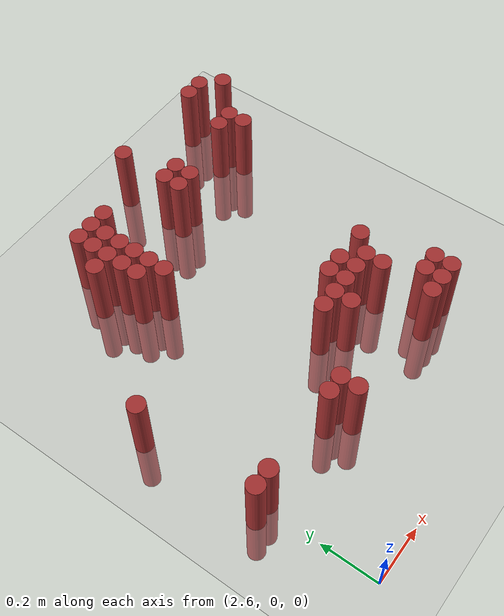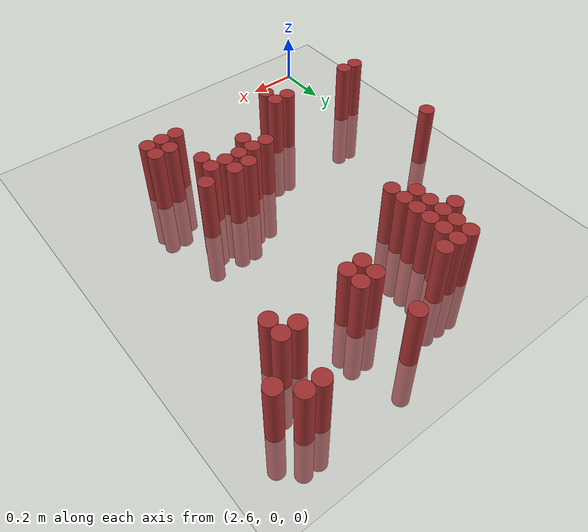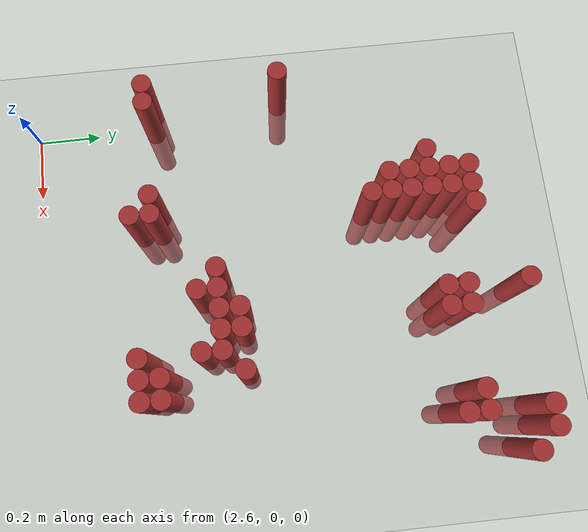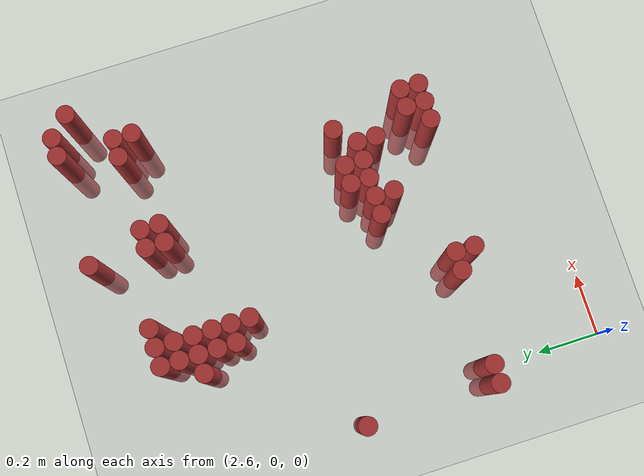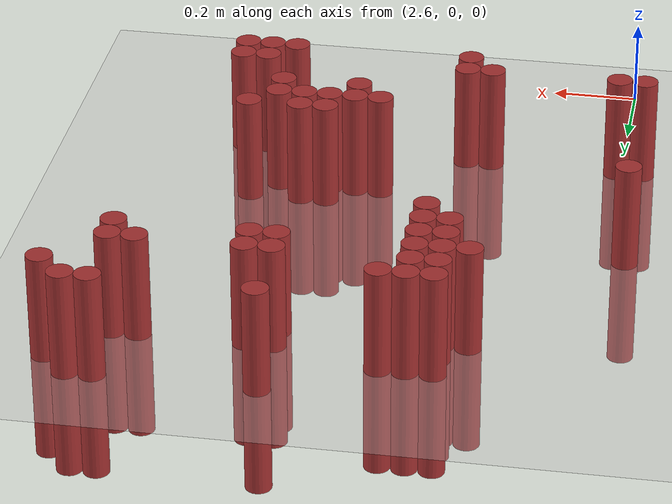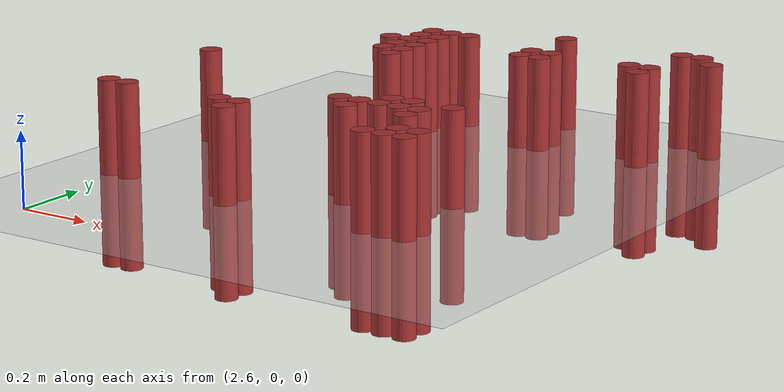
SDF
<sdf version="1.6">
 <world name="default">
  <model name="ground_plane">
   <static>1</static>
   <link name="link">
    <collision name="collision">
     <geometry><plane><normal>0 0 1</normal><size>100 100</size></plane></geometry>
     <surface><friction><ode><mu>100</mu><mu2>50</mu2></ode></friction></surface>
    </collision>
    <visual name="visual">
     <cast_shadows>0</cast_shadows>
     <geometry><plane><normal>0 0 1</normal><size>100 100</size></plane></geometry>
     <material>
      <script><uri>file://media/materials/scripts/gazebo.material</uri><name>Gazebo/Grey</name></script>
     </material>
    </visual>
   </link>
  </model>
  <model name="unit_cylinder_151">
   <static>1</static>
   <pose>3.270000 1.470000 0.000000 0.000000 0.000000 0.000000</pose>
   <link name="link">
    <inertial>
     <mass>1</mass>
     <inertia><ixx>0.145833</ixx><ixy>0</ixy><ixz>0</ixz><iyy>0.145833</iyy><iyz>0</iyz><izz>0.125</izz></inertia>
    </inertial>
    <collision name="collision">
     <geometry><cylinder><radius>0.030000</radius><length>0.5</length></cylinder></geometry>
    </collision>
    <visual name="visual">
     <geometry><cylinder><radius>0.030000</radius><length>0.5</length></cylinder></geometry>
     <material>
      <ambient>0.648000 0.192000 0.192000 1</ambient>
      <diffuse>0.648000 0.192000 0.192000 1</diffuse>
     </material>
     <material>
      <script><name>Gazebo/Grey</name><uri>file://media/materials/scripts/gazebo.material</uri></script>
     </material>
    </visual>
   </link>
  </model>
  <model name="unit_cylinder_152">
   <static>1</static>
   <pose>3.630000 1.470000 0.000000 0.000000 0.000000 0.000000</pose>
   <link name="link">
    <inertial>
     <mass>1</mass>
     <inertia><ixx>0.145833</ixx><ixy>0</ixy><ixz>0</ixz><iyy>0.145833</iyy><iyz>0</iyz><izz>0.125</izz></inertia>
    </inertial>
    <collision name="collision">
     <geometry><cylinder><radius>0.030000</radius><length>0.5</length></cylinder></geometry>
    </collision>
    <visual name="visual">
     <geometry><cylinder><radius>0.030000</radius><length>0.5</length></cylinder></geometry>
     <material>
      <ambient>0.648000 0.192000 0.192000 1</ambient>
      <diffuse>0.648000 0.192000 0.192000 1</diffuse>
     </material>
     <material>
      <script><name>Gazebo/Grey</name><uri>file://media/materials/scripts/gazebo.material</uri></script>
     </material>
    </visual>
   </link>
  </model>
  <model name="unit_cylinder_153">
   <static>1</static>
   <pose>3.690000 1.470000 0.000000 0.000000 0.000000 0.000000</pose>
   <link name="link">
    <inertial>
     <mass>1</mass>
     <inertia><ixx>0.145833</ixx><ixy>0</ixy><ixz>0</ixz><iyy>0.145833</iyy><iyz>0</iyz><izz>0.125</izz></inertia>
    </inertial>
    <collision name="collision">
     <geometry><cylinder><radius>0.030000</radius><length>0.5</length></cylinder></geometry>
    </collision>
    <visual name="visual">
     <geometry><cylinder><radius>0.030000</radius><length>0.5</length></cylinder></geometry>
     <material>
      <ambient>0.648000 0.192000 0.192000 1</ambient>
      <diffuse>0.648000 0.192000 0.192000 1</diffuse>
     </material>
     <material>
      <script><name>Gazebo/Grey</name><uri>file://media/materials/scripts/gazebo.material</uri></script>
     </material>
    </visual>
   </link>
  </model>
  <model name="unit_cylinder_155">
   <static>1</static>
   <pose>3.750000 1.410000 0.000000 0.000000 0.000000 0.000000</pose>
   <link name="link">
    <inertial>
     <mass>1</mass>
     <inertia><ixx>0.145833</ixx><ixy>0</ixy><ixz>0</ixz><iyy>0.145833</iyy><iyz>0</iyz><izz>0.125</izz></inertia>
    </inertial>
    <collision name="collision">
     <geometry><cylinder><radius>0.030000</radius><length>0.5</length></cylinder></geometry>
    </collision>
    <visual name="visual">
     <geometry><cylinder><radius>0.030000</radius><length>0.5</length></cylinder></geometry>
     <material>
      <ambient>0.648000 0.192000 0.192000 1</ambient>
      <diffuse>0.648000 0.192000 0.192000 1</diffuse>
     </material>
     <material>
      <script><name>Gazebo/Grey</name><uri>file://media/materials/scripts/gazebo.material</uri></script>
     </material>
    </visual>
   </link>
  </model>
  <model name="unit_cylinder_156">
   <static>1</static>
   <pose>2.910000 1.350000 0.000000 0.000000 0.000000 0.000000</pose>
   <link name="link">
    <inertial>
     <mass>1</mass>
     <inertia><ixx>0.145833</ixx><ixy>0</ixy><ixz>0</ixz><iyy>0.145833</iyy><iyz>0</iyz><izz>0.125</izz></inertia>
    </inertial>
    <collision name="collision">
     <geometry><cylinder><radius>0.030000</radius><length>0.5</length></cylinder></geometry>
    </collision>
    <visual name="visual">
     <geometry><cylinder><radius>0.030000</radius><length>0.5</length></cylinder></geometry>
     <material>
      <ambient>0.648000 0.192000 0.192000 1</ambient>
      <diffuse>0.648000 0.192000 0.192000 1</diffuse>
     </material>
     <material>
      <script><name>Gazebo/Grey</name><uri>file://media/materials/scripts/gazebo.material</uri></script>
     </material>
    </visual>
   </link>
  </model>
  <model name="unit_cylinder_157">
   <static>1</static>
   <pose>2.970000 1.350000 0.000000 0.000000 0.000000 0.000000</pose>
   <link name="link">
    <inertial>
     <mass>1</mass>
     <inertia><ixx>0.145833</ixx><ixy>0</ixy><ixz>0</ixz><iyy>0.145833</iyy><iyz>0</iyz><izz>0.125</izz></inertia>
    </inertial>
    <collision name="collision">
     <geometry><cylinder><radius>0.030000</radius><length>0.5</length></cylinder></geometry>
    </collision>
    <visual name="visual">
     <geometry><cylinder><radius>0.030000</radius><length>0.5</length></cylinder></geometry>
     <material>
      <ambient>0.648000 0.192000 0.192000 1</ambient>
      <diffuse>0.648000 0.192000 0.192000 1</diffuse>
     </material>
     <material>
      <script><name>Gazebo/Grey</name><uri>file://media/materials/scripts/gazebo.material</uri></script>
     </material>
    </visual>
   </link>
  </model>
  <model name="unit_cylinder_158">
   <static>1</static>
   <pose>3.030000 1.350000 0.000000 0.000000 0.000000 0.000000</pose>
   <link name="link">
    <inertial>
     <mass>1</mass>
     <inertia><ixx>0.145833</ixx><ixy>0</ixy><ixz>0</ixz><iyy>0.145833</iyy><iyz>0</iyz><izz>0.125</izz></inertia>
    </inertial>
    <collision name="collision">
     <geometry><cylinder><radius>0.030000</radius><length>0.5</length></cylinder></geometry>
    </collision>
    <visual name="visual">
     <geometry><cylinder><radius>0.030000</radius><length>0.5</length></cylinder></geometry>
     <material>
      <ambient>0.648000 0.192000 0.192000 1</ambient>
      <diffuse>0.648000 0.192000 0.192000 1</diffuse>
     </material>
     <material>
      <script><name>Gazebo/Grey</name><uri>file://media/materials/scripts/gazebo.material</uri></script>
     </material>
    </visual>
   </link>
  </model>
  <model name="unit_cylinder_159">
   <static>1</static>
   <pose>2.910000 1.290000 0.000000 0.000000 0.000000 0.000000</pose>
   <link name="link">
    <inertial>
     <mass>1</mass>
     <inertia><ixx>0.145833</ixx><ixy>0</ixy><ixz>0</ixz><iyy>0.145833</iyy><iyz>0</iyz><izz>0.125</izz></inertia>
    </inertial>
    <collision name="collision">
     <geometry><cylinder><radius>0.030000</radius><length>0.5</length></cylinder></geometry>
    </collision>
    <visual name="visual">
     <geometry><cylinder><radius>0.030000</radius><length>0.5</length></cylinder></geometry>
     <material>
      <ambient>0.648000 0.192000 0.192000 1</ambient>
      <diffuse>0.648000 0.192000 0.192000 1</diffuse>
     </material>
     <material>
      <script><name>Gazebo/Grey</name><uri>file://media/materials/scripts/gazebo.material</uri></script>
     </material>
    </visual>
   </link>
  </model>
  <model name="unit_cylinder_160">
   <static>1</static>
   <pose>2.970000 1.290000 0.000000 0.000000 0.000000 0.000000</pose>
   <link name="link">
    <inertial>
     <mass>1</mass>
     <inertia><ixx>0.145833</ixx><ixy>0</ixy><ixz>0</ixz><iyy>0.145833</iyy><iyz>0</iyz><izz>0.125</izz></inertia>
    </inertial>
    <collision name="collision">
     <geometry><cylinder><radius>0.030000</radius><length>0.5</length></cylinder></geometry>
    </collision>
    <visual name="visual">
     <geometry><cylinder><radius>0.030000</radius><length>0.5</length></cylinder></geometry>
     <material>
      <ambient>0.648000 0.192000 0.192000 1</ambient>
      <diffuse>0.648000 0.192000 0.192000 1</diffuse>
     </material>
     <material>
      <script><name>Gazebo/Grey</name><uri>file://media/materials/scripts/gazebo.material</uri></script>
     </material>
    </visual>
   </link>
  </model>
  <model name="unit_cylinder_161">
   <static>1</static>
   <pose>3.270000 1.290000 0.000000 0.000000 0.000000 0.000000</pose>
   <link name="link">
    <inertial>
     <mass>1</mass>
     <inertia><ixx>0.145833</ixx><ixy>0</ixy><ixz>0</ixz><iyy>0.145833</iyy><iyz>0</iyz><izz>0.125</izz></inertia>
    </inertial>
    <collision name="collision">
     <geometry><cylinder><radius>0.030000</radius><length>0.5</length></cylinder></geometry>
    </collision>
    <visual name="visual">
     <geometry><cylinder><radius>0.030000</radius><length>0.5</length></cylinder></geometry>
     <material>
      <ambient>0.648000 0.192000 0.192000 1</ambient>
      <diffuse>0.648000 0.192000 0.192000 1</diffuse>
     </material>
     <material>
      <script><name>Gazebo/Grey</name><uri>file://media/materials/scripts/gazebo.material</uri></script>
     </material>
    </visual>
   </link>
  </model>
  <model name="unit_cylinder_162">
   <static>1</static>
   <pose>3.330000 1.290000 0.000000 0.000000 0.000000 0.000000</pose>
   <link name="link">
    <inertial>
     <mass>1</mass>
     <inertia><ixx>0.145833</ixx><ixy>0</ixy><ixz>0</ixz><iyy>0.145833</iyy><iyz>0</iyz><izz>0.125</izz></inertia>
    </inertial>
    <collision name="collision">
     <geometry><cylinder><radius>0.030000</radius><length>0.5</length></cylinder></geometry>
    </collision>
    <visual name="visual">
     <geometry><cylinder><radius>0.030000</radius><length>0.5</length></cylinder></geometry>
     <material>
      <ambient>0.648000 0.192000 0.192000 1</ambient>
      <diffuse>0.648000 0.192000 0.192000 1</diffuse>
     </material>
     <material>
      <script><name>Gazebo/Grey</name><uri>file://media/materials/scripts/gazebo.material</uri></script>
     </material>
    </visual>
   </link>
  </model>
  <model name="unit_cylinder_163">
   <static>1</static>
   <pose>3.570000 1.290000 0.000000 0.000000 0.000000 0.000000</pose>
   <link name="link">
    <inertial>
     <mass>1</mass>
     <inertia><ixx>0.145833</ixx><ixy>0</ixy><ixz>0</ixz><iyy>0.145833</iyy><iyz>0</iyz><izz>0.125</izz></inertia>
    </inertial>
    <collision name="collision">
     <geometry><cylinder><radius>0.030000</radius><length>0.5</length></cylinder></geometry>
    </collision>
    <visual name="visual">
     <geometry><cylinder><radius>0.030000</radius><length>0.5</length></cylinder></geometry>
     <material>
      <ambient>0.648000 0.192000 0.192000 1</ambient>
      <diffuse>0.648000 0.192000 0.192000 1</diffuse>
     </material>
     <material>
      <script><name>Gazebo/Grey</name><uri>file://media/materials/scripts/gazebo.material</uri></script>
     </material>
    </visual>
   </link>
  </model>
  <model name="unit_cylinder_164">
   <static>1</static>
   <pose>3.630000 1.290000 0.000000 0.000000 0.000000 0.000000</pose>
   <link name="link">
    <inertial>
     <mass>1</mass>
     <inertia><ixx>0.145833</ixx><ixy>0</ixy><ixz>0</ixz><iyy>0.145833</iyy><iyz>0</iyz><izz>0.125</izz></inertia>
    </inertial>
    <collision name="collision">
     <geometry><cylinder><radius>0.030000</radius><length>0.5</length></cylinder></geometry>
    </collision>
    <visual name="visual">
     <geometry><cylinder><radius>0.030000</radius><length>0.5</length></cylinder></geometry>
     <material>
      <ambient>0.648000 0.192000 0.192000 1</ambient>
      <diffuse>0.648000 0.192000 0.192000 1</diffuse>
     </material>
     <material>
      <script><name>Gazebo/Grey</name><uri>file://media/materials/scripts/gazebo.material</uri></script>
     </material>
    </visual>
   </link>
  </model>
  <model name="unit_cylinder_166">
   <static>1</static>
   <pose>2.850000 1.230000 0.000000 0.000000 0.000000 0.000000</pose>
   <link name="link">
    <inertial>
     <mass>1</mass>
     <inertia><ixx>0.145833</ixx><ixy>0</ixy><ixz>0</ixz><iyy>0.145833</iyy><iyz>0</iyz><izz>0.125</izz></inertia>
    </inertial>
    <collision name="collision">
     <geometry><cylinder><radius>0.030000</radius><length>0.5</length></cylinder></geometry>
    </collision>
    <visual name="visual">
     <geometry><cylinder><radius>0.030000</radius><length>0.5</length></cylinder></geometry>
     <material>
      <ambient>0.648000 0.192000 0.192000 1</ambient>
      <diffuse>0.648000 0.192000 0.192000 1</diffuse>
     </material>
     <material>
      <script><name>Gazebo/Grey</name><uri>file://media/materials/scripts/gazebo.material</uri></script>
     </material>
    </visual>
   </link>
  </model>
  <model name="unit_cylinder_167">
   <static>1</static>
   <pose>2.910000 1.230000 0.000000 0.000000 0.000000 0.000000</pose>
   <link name="link">
    <inertial>
     <mass>1</mass>
     <inertia><ixx>0.145833</ixx><ixy>0</ixy><ixz>0</ixz><iyy>0.145833</iyy><iyz>0</iyz><izz>0.125</izz></inertia>
    </inertial>
    <collision name="collision">
     <geometry><cylinder><radius>0.030000</radius><length>0.5</length></cylinder></geometry>
    </collision>
    <visual name="visual">
     <geometry><cylinder><radius>0.030000</radius><length>0.5</length></cylinder></geometry>
     <material>
      <ambient>0.648000 0.192000 0.192000 1</ambient>
      <diffuse>0.648000 0.192000 0.192000 1</diffuse>
     </material>
     <material>
      <script><name>Gazebo/Grey</name><uri>file://media/materials/scripts/gazebo.material</uri></script>
     </material>
    </visual>
   </link>
  </model>
  <model name="unit_cylinder_168">
   <static>1</static>
   <pose>2.970000 1.230000 0.000000 0.000000 0.000000 0.000000</pose>
   <link name="link">
    <inertial>
     <mass>1</mass>
     <inertia><ixx>0.145833</ixx><ixy>0</ixy><ixz>0</ixz><iyy>0.145833</iyy><iyz>0</iyz><izz>0.125</izz></inertia>
    </inertial>
    <collision name="collision">
     <geometry><cylinder><radius>0.030000</radius><length>0.5</length></cylinder></geometry>
    </collision>
    <visual name="visual">
     <geometry><cylinder><radius>0.030000</radius><length>0.5</length></cylinder></geometry>
     <material>
      <ambient>0.648000 0.192000 0.192000 1</ambient>
      <diffuse>0.648000 0.192000 0.192000 1</diffuse>
     </material>
     <material>
      <script><name>Gazebo/Grey</name><uri>file://media/materials/scripts/gazebo.material</uri></script>
     </material>
    </visual>
   </link>
  </model>
  <model name="unit_cylinder_169">
   <static>1</static>
   <pose>3.270000 1.230000 0.000000 0.000000 0.000000 0.000000</pose>
   <link name="link">
    <inertial>
     <mass>1</mass>
     <inertia><ixx>0.145833</ixx><ixy>0</ixy><ixz>0</ixz><iyy>0.145833</iyy><iyz>0</iyz><izz>0.125</izz></inertia>
    </inertial>
    <collision name="collision">
     <geometry><cylinder><radius>0.030000</radius><length>0.5</length></cylinder></geometry>
    </collision>
    <visual name="visual">
     <geometry><cylinder><radius>0.030000</radius><length>0.5</length></cylinder></geometry>
     <material>
      <ambient>0.648000 0.192000 0.192000 1</ambient>
      <diffuse>0.648000 0.192000 0.192000 1</diffuse>
     </material>
     <material>
      <script><name>Gazebo/Grey</name><uri>file://media/materials/scripts/gazebo.material</uri></script>
     </material>
    </visual>
   </link>
  </model>
  <model name="unit_cylinder_170">
   <static>1</static>
   <pose>3.330000 1.230000 0.000000 0.000000 0.000000 0.000000</pose>
   <link name="link">
    <inertial>
     <mass>1</mass>
     <inertia><ixx>0.145833</ixx><ixy>0</ixy><ixz>0</ixz><iyy>0.145833</iyy><iyz>0</iyz><izz>0.125</izz></inertia>
    </inertial>
    <collision name="collision">
     <geometry><cylinder><radius>0.030000</radius><length>0.5</length></cylinder></geometry>
    </collision>
    <visual name="visual">
     <geometry><cylinder><radius>0.030000</radius><length>0.5</length></cylinder></geometry>
     <material>
      <ambient>0.648000 0.192000 0.192000 1</ambient>
      <diffuse>0.648000 0.192000 0.192000 1</diffuse>
     </material>
     <material>
      <script><name>Gazebo/Grey</name><uri>file://media/materials/scripts/gazebo.material</uri></script>
     </material>
    </visual>
   </link>
  </model>
  <model name="unit_cylinder_171">
   <static>1</static>
   <pose>3.630000 1.230000 0.000000 0.000000 0.000000 0.000000</pose>
   <link name="link">
    <inertial>
     <mass>1</mass>
     <inertia><ixx>0.145833</ixx><ixy>0</ixy><ixz>0</ixz><iyy>0.145833</iyy><iyz>0</iyz><izz>0.125</izz></inertia>
    </inertial>
    <collision name="collision">
     <geometry><cylinder><radius>0.030000</radius><length>0.5</length></cylinder></geometry>
    </collision>
    <visual name="visual">
     <geometry><cylinder><radius>0.030000</radius><length>0.5</length></cylinder></geometry>
     <material>
      <ambient>0.648000 0.192000 0.192000 1</ambient>
      <diffuse>0.648000 0.192000 0.192000 1</diffuse>
     </material>
     <material>
      <script><name>Gazebo/Grey</name><uri>file://media/materials/scripts/gazebo.material</uri></script>
     </material>
    </visual>
   </link>
  </model>
  <model name="unit_cylinder_174">
   <static>1</static>
   <pose>2.910000 1.170000 0.000000 0.000000 0.000000 0.000000</pose>
   <link name="link">
    <inertial>
     <mass>1</mass>
     <inertia><ixx>0.145833</ixx><ixy>0</ixy><ixz>0</ixz><iyy>0.145833</iyy><iyz>0</iyz><izz>0.125</izz></inertia>
    </inertial>
    <collision name="collision">
     <geometry><cylinder><radius>0.030000</radius><length>0.5</length></cylinder></geometry>
    </collision>
    <visual name="visual">
     <geometry><cylinder><radius>0.030000</radius><length>0.5</length></cylinder></geometry>
     <material>
      <ambient>0.648000 0.192000 0.192000 1</ambient>
      <diffuse>0.648000 0.192000 0.192000 1</diffuse>
     </material>
     <material>
      <script><name>Gazebo/Grey</name><uri>file://media/materials/scripts/gazebo.material</uri></script>
     </material>
    </visual>
   </link>
  </model>
  <model name="unit_cylinder_175">
   <static>1</static>
   <pose>2.970000 1.170000 0.000000 0.000000 0.000000 0.000000</pose>
   <link name="link">
    <inertial>
     <mass>1</mass>
     <inertia><ixx>0.145833</ixx><ixy>0</ixy><ixz>0</ixz><iyy>0.145833</iyy><iyz>0</iyz><izz>0.125</izz></inertia>
    </inertial>
    <collision name="collision">
     <geometry><cylinder><radius>0.030000</radius><length>0.5</length></cylinder></geometry>
    </collision>
    <visual name="visual">
     <geometry><cylinder><radius>0.030000</radius><length>0.5</length></cylinder></geometry>
     <material>
      <ambient>0.648000 0.192000 0.192000 1</ambient>
      <diffuse>0.648000 0.192000 0.192000 1</diffuse>
     </material>
     <material>
      <script><name>Gazebo/Grey</name><uri>file://media/materials/scripts/gazebo.material</uri></script>
     </material>
    </visual>
   </link>
  </model>
  <model name="unit_cylinder_176">
   <static>1</static>
   <pose>2.910000 1.110000 0.000000 0.000000 0.000000 0.000000</pose>
   <link name="link">
    <inertial>
     <mass>1</mass>
     <inertia><ixx>0.145833</ixx><ixy>0</ixy><ixz>0</ixz><iyy>0.145833</iyy><iyz>0</iyz><izz>0.125</izz></inertia>
    </inertial>
    <collision name="collision">
     <geometry><cylinder><radius>0.030000</radius><length>0.5</length></cylinder></geometry>
    </collision>
    <visual name="visual">
     <geometry><cylinder><radius>0.030000</radius><length>0.5</length></cylinder></geometry>
     <material>
      <ambient>0.648000 0.192000 0.192000 1</ambient>
      <diffuse>0.648000 0.192000 0.192000 1</diffuse>
     </material>
     <material>
      <script><name>Gazebo/Grey</name><uri>file://media/materials/scripts/gazebo.material</uri></script>
     </material>
    </visual>
   </link>
  </model>
  <model name="unit_cylinder_177">
   <static>1</static>
   <pose>2.970000 1.110000 0.000000 0.000000 0.000000 0.000000</pose>
   <link name="link">
    <inertial>
     <mass>1</mass>
     <inertia><ixx>0.145833</ixx><ixy>0</ixy><ixz>0</ixz><iyy>0.145833</iyy><iyz>0</iyz><izz>0.125</izz></inertia>
    </inertial>
    <collision name="collision">
     <geometry><cylinder><radius>0.030000</radius><length>0.5</length></cylinder></geometry>
    </collision>
    <visual name="visual">
     <geometry><cylinder><radius>0.030000</radius><length>0.5</length></cylinder></geometry>
     <material>
      <ambient>0.648000 0.192000 0.192000 1</ambient>
      <diffuse>0.648000 0.192000 0.192000 1</diffuse>
     </material>
     <material>
      <script><name>Gazebo/Grey</name><uri>file://media/materials/scripts/gazebo.material</uri></script>
     </material>
    </visual>
   </link>
  </model>
  <model name="unit_cylinder_180">
   <static>1</static>
   <pose>2.970000 1.050000 0.000000 0.000000 0.000000 0.000000</pose>
   <link name="link">
    <inertial>
     <mass>1</mass>
     <inertia><ixx>0.145833</ixx><ixy>0</ixy><ixz>0</ixz><iyy>0.145833</iyy><iyz>0</iyz><izz>0.125</izz></inertia>
    </inertial>
    <collision name="collision">
     <geometry><cylinder><radius>0.030000</radius><length>0.5</length></cylinder></geometry>
    </collision>
    <visual name="visual">
     <geometry><cylinder><radius>0.030000</radius><length>0.5</length></cylinder></geometry>
     <material>
      <ambient>0.648000 0.192000 0.192000 1</ambient>
      <diffuse>0.648000 0.192000 0.192000 1</diffuse>
     </material>
     <material>
      <script><name>Gazebo/Grey</name><uri>file://media/materials/scripts/gazebo.material</uri></script>
     </material>
    </visual>
   </link>
  </model>
  <model name="unit_cylinder_191">
   <static>1</static>
   <pose>2.550000 0.810000 0.000000 0.000000 0.000000 0.000000</pose>
   <link name="link">
    <inertial>
     <mass>1</mass>
     <inertia><ixx>0.145833</ixx><ixy>0</ixy><ixz>0</ixz><iyy>0.145833</iyy><iyz>0</iyz><izz>0.125</izz></inertia>
    </inertial>
    <collision name="collision">
     <geometry><cylinder><radius>0.030000</radius><length>0.5</length></cylinder></geometry>
    </collision>
    <visual name="visual">
     <geometry><cylinder><radius>0.030000</radius><length>0.5</length></cylinder></geometry>
     <material>
      <ambient>0.648000 0.192000 0.192000 1</ambient>
      <diffuse>0.648000 0.192000 0.192000 1</diffuse>
     </material>
     <material>
      <script><name>Gazebo/Grey</name><uri>file://media/materials/scripts/gazebo.material</uri></script>
     </material>
    </visual>
   </link>
  </model>
  <model name="unit_cylinder_193">
   <static>1</static>
   <pose>3.270000 0.630000 0.000000 0.000000 0.000000 0.000000</pose>
   <link name="link">
    <inertial>
     <mass>1</mass>
     <inertia><ixx>0.145833</ixx><ixy>0</ixy><ixz>0</ixz><iyy>0.145833</iyy><iyz>0</iyz><izz>0.125</izz></inertia>
    </inertial>
    <collision name="collision">
     <geometry><cylinder><radius>0.030000</radius><length>0.5</length></cylinder></geometry>
    </collision>
    <visual name="visual">
     <geometry><cylinder><radius>0.030000</radius><length>0.5</length></cylinder></geometry>
     <material>
      <ambient>0.648000 0.192000 0.192000 1</ambient>
      <diffuse>0.648000 0.192000 0.192000 1</diffuse>
     </material>
     <material>
      <script><name>Gazebo/Grey</name><uri>file://media/materials/scripts/gazebo.material</uri></script>
     </material>
    </visual>
   </link>
  </model>
  <model name="unit_cylinder_194">
   <static>1</static>
   <pose>3.330000 0.630000 0.000000 0.000000 0.000000 0.000000</pose>
   <link name="link">
    <inertial>
     <mass>1</mass>
     <inertia><ixx>0.145833</ixx><ixy>0</ixy><ixz>0</ixz><iyy>0.145833</iyy><iyz>0</iyz><izz>0.125</izz></inertia>
    </inertial>
    <collision name="collision">
     <geometry><cylinder><radius>0.030000</radius><length>0.5</length></cylinder></geometry>
    </collision>
    <visual name="visual">
     <geometry><cylinder><radius>0.030000</radius><length>0.5</length></cylinder></geometry>
     <material>
      <ambient>0.648000 0.192000 0.192000 1</ambient>
      <diffuse>0.648000 0.192000 0.192000 1</diffuse>
     </material>
     <material>
      <script><name>Gazebo/Grey</name><uri>file://media/materials/scripts/gazebo.material</uri></script>
     </material>
    </visual>
   </link>
  </model>
  <model name="unit_cylinder_195">
   <static>1</static>
   <pose>3.450000 0.630000 0.000000 0.000000 0.000000 0.000000</pose>
   <link name="link">
    <inertial>
     <mass>1</mass>
     <inertia><ixx>0.145833</ixx><ixy>0</ixy><ixz>0</ixz><iyy>0.145833</iyy><iyz>0</iyz><izz>0.125</izz></inertia>
    </inertial>
    <collision name="collision">
     <geometry><cylinder><radius>0.030000</radius><length>0.5</length></cylinder></geometry>
    </collision>
    <visual name="visual">
     <geometry><cylinder><radius>0.030000</radius><length>0.5</length></cylinder></geometry>
     <material>
      <ambient>0.648000 0.192000 0.192000 1</ambient>
      <diffuse>0.648000 0.192000 0.192000 1</diffuse>
     </material>
     <material>
      <script><name>Gazebo/Grey</name><uri>file://media/materials/scripts/gazebo.material</uri></script>
     </material>
    </visual>
   </link>
  </model>
  <model name="unit_cylinder_196">
   <static>1</static>
   <pose>3.150000 0.570000 0.000000 0.000000 0.000000 0.000000</pose>
   <link name="link">
    <inertial>
     <mass>1</mass>
     <inertia><ixx>0.145833</ixx><ixy>0</ixy><ixz>0</ixz><iyy>0.145833</iyy><iyz>0</iyz><izz>0.125</izz></inertia>
    </inertial>
    <collision name="collision">
     <geometry><cylinder><radius>0.030000</radius><length>0.5</length></cylinder></geometry>
    </collision>
    <visual name="visual">
     <geometry><cylinder><radius>0.030000</radius><length>0.5</length></cylinder></geometry>
     <material>
      <ambient>0.648000 0.192000 0.192000 1</ambient>
      <diffuse>0.648000 0.192000 0.192000 1</diffuse>
     </material>
     <material>
      <script><name>Gazebo/Grey</name><uri>file://media/materials/scripts/gazebo.material</uri></script>
     </material>
    </visual>
   </link>
  </model>
  <model name="unit_cylinder_197">
   <static>1</static>
   <pose>3.210000 0.570000 0.000000 0.000000 0.000000 0.000000</pose>
   <link name="link">
    <inertial>
     <mass>1</mass>
     <inertia><ixx>0.145833</ixx><ixy>0</ixy><ixz>0</ixz><iyy>0.145833</iyy><iyz>0</iyz><izz>0.125</izz></inertia>
    </inertial>
    <collision name="collision">
     <geometry><cylinder><radius>0.030000</radius><length>0.5</length></cylinder></geometry>
    </collision>
    <visual name="visual">
     <geometry><cylinder><radius>0.030000</radius><length>0.5</length></cylinder></geometry>
     <material>
      <ambient>0.648000 0.192000 0.192000 1</ambient>
      <diffuse>0.648000 0.192000 0.192000 1</diffuse>
     </material>
     <material>
      <script><name>Gazebo/Grey</name><uri>file://media/materials/scripts/gazebo.material</uri></script>
     </material>
    </visual>
   </link>
  </model>
  <model name="unit_cylinder_198">
   <static>1</static>
   <pose>3.270000 0.570000 0.000000 0.000000 0.000000 0.000000</pose>
   <link name="link">
    <inertial>
     <mass>1</mass>
     <inertia><ixx>0.145833</ixx><ixy>0</ixy><ixz>0</ixz><iyy>0.145833</iyy><iyz>0</iyz><izz>0.125</izz></inertia>
    </inertial>
    <collision name="collision">
     <geometry><cylinder><radius>0.030000</radius><length>0.5</length></cylinder></geometry>
    </collision>
    <visual name="visual">
     <geometry><cylinder><radius>0.030000</radius><length>0.5</length></cylinder></geometry>
     <material>
      <ambient>0.648000 0.192000 0.192000 1</ambient>
      <diffuse>0.648000 0.192000 0.192000 1</diffuse>
     </material>
     <material>
      <script><name>Gazebo/Grey</name><uri>file://media/materials/scripts/gazebo.material</uri></script>
     </material>
    </visual>
   </link>
  </model>
  <model name="unit_cylinder_199">
   <static>1</static>
   <pose>3.330000 0.570000 0.000000 0.000000 0.000000 0.000000</pose>
   <link name="link">
    <inertial>
     <mass>1</mass>
     <inertia><ixx>0.145833</ixx><ixy>0</ixy><ixz>0</ixz><iyy>0.145833</iyy><iyz>0</iyz><izz>0.125</izz></inertia>
    </inertial>
    <collision name="collision">
     <geometry><cylinder><radius>0.030000</radius><length>0.5</length></cylinder></geometry>
    </collision>
    <visual name="visual">
     <geometry><cylinder><radius>0.030000</radius><length>0.5</length></cylinder></geometry>
     <material>
      <ambient>0.648000 0.192000 0.192000 1</ambient>
      <diffuse>0.648000 0.192000 0.192000 1</diffuse>
     </material>
     <material>
      <script><name>Gazebo/Grey</name><uri>file://media/materials/scripts/gazebo.material</uri></script>
     </material>
    </visual>
   </link>
  </model>
  <model name="unit_cylinder_200">
   <static>1</static>
   <pose>3.390000 0.570000 0.000000 0.000000 0.000000 0.000000</pose>
   <link name="link">
    <inertial>
     <mass>1</mass>
     <inertia><ixx>0.145833</ixx><ixy>0</ixy><ixz>0</ixz><iyy>0.145833</iyy><iyz>0</iyz><izz>0.125</izz></inertia>
    </inertial>
    <collision name="collision">
     <geometry><cylinder><radius>0.030000</radius><length>0.5</length></cylinder></geometry>
    </collision>
    <visual name="visual">
     <geometry><cylinder><radius>0.030000</radius><length>0.5</length></cylinder></geometry>
     <material>
      <ambient>0.648000 0.192000 0.192000 1</ambient>
      <diffuse>0.648000 0.192000 0.192000 1</diffuse>
     </material>
     <material>
      <script><name>Gazebo/Grey</name><uri>file://media/materials/scripts/gazebo.material</uri></script>
     </material>
    </visual>
   </link>
  </model>
  <model name="unit_cylinder_201">
   <static>1</static>
   <pose>3.210000 0.510000 0.000000 0.000000 0.000000 0.000000</pose>
   <link name="link">
    <inertial>
     <mass>1</mass>
     <inertia><ixx>0.145833</ixx><ixy>0</ixy><ixz>0</ixz><iyy>0.145833</iyy><iyz>0</iyz><izz>0.125</izz></inertia>
    </inertial>
    <collision name="collision">
     <geometry><cylinder><radius>0.030000</radius><length>0.5</length></cylinder></geometry>
    </collision>
    <visual name="visual">
     <geometry><cylinder><radius>0.030000</radius><length>0.5</length></cylinder></geometry>
     <material>
      <ambient>0.648000 0.192000 0.192000 1</ambient>
      <diffuse>0.648000 0.192000 0.192000 1</diffuse>
     </material>
     <material>
      <script><name>Gazebo/Grey</name><uri>file://media/materials/scripts/gazebo.material</uri></script>
     </material>
    </visual>
   </link>
  </model>
  <model name="unit_cylinder_202">
   <static>1</static>
   <pose>3.390000 0.510000 0.000000 0.000000 0.000000 0.000000</pose>
   <link name="link">
    <inertial>
     <mass>1</mass>
     <inertia><ixx>0.145833</ixx><ixy>0</ixy><ixz>0</ixz><iyy>0.145833</iyy><iyz>0</iyz><izz>0.125</izz></inertia>
    </inertial>
    <collision name="collision">
     <geometry><cylinder><radius>0.030000</radius><length>0.5</length></cylinder></geometry>
    </collision>
    <visual name="visual">
     <geometry><cylinder><radius>0.030000</radius><length>0.5</length></cylinder></geometry>
     <material>
      <ambient>0.648000 0.192000 0.192000 1</ambient>
      <diffuse>0.648000 0.192000 0.192000 1</diffuse>
     </material>
     <material>
      <script><name>Gazebo/Grey</name><uri>file://media/materials/scripts/gazebo.material</uri></script>
     </material>
    </visual>
   </link>
  </model>
  <model name="unit_cylinder_203">
   <static>1</static>
   <pose>2.550000 0.390000 0.000000 0.000000 0.000000 0.000000</pose>
   <link name="link">
    <inertial>
     <mass>1</mass>
     <inertia><ixx>0.145833</ixx><ixy>0</ixy><ixz>0</ixz><iyy>0.145833</iyy><iyz>0</iyz><izz>0.125</izz></inertia>
    </inertial>
    <collision name="collision">
     <geometry><cylinder><radius>0.030000</radius><length>0.5</length></cylinder></geometry>
    </collision>
    <visual name="visual">
     <geometry><cylinder><radius>0.030000</radius><length>0.5</length></cylinder></geometry>
     <material>
      <ambient>0.648000 0.192000 0.192000 1</ambient>
      <diffuse>0.648000 0.192000 0.192000 1</diffuse>
     </material>
     <material>
      <script><name>Gazebo/Grey</name><uri>file://media/materials/scripts/gazebo.material</uri></script>
     </material>
    </visual>
   </link>
  </model>
  <model name="unit_cylinder_204">
   <static>1</static>
   <pose>2.610000 0.390000 0.000000 0.000000 0.000000 0.000000</pose>
   <link name="link">
    <inertial>
     <mass>1</mass>
     <inertia><ixx>0.145833</ixx><ixy>0</ixy><ixz>0</ixz><iyy>0.145833</iyy><iyz>0</iyz><izz>0.125</izz></inertia>
    </inertial>
    <collision name="collision">
     <geometry><cylinder><radius>0.030000</radius><length>0.5</length></cylinder></geometry>
    </collision>
    <visual name="visual">
     <geometry><cylinder><radius>0.030000</radius><length>0.5</length></cylinder></geometry>
     <material>
      <ambient>0.648000 0.192000 0.192000 1</ambient>
      <diffuse>0.648000 0.192000 0.192000 1</diffuse>
     </material>
     <material>
      <script><name>Gazebo/Grey</name><uri>file://media/materials/scripts/gazebo.material</uri></script>
     </material>
    </visual>
   </link>
  </model>
  <model name="unit_cylinder_205">
   <static>1</static>
   <pose>2.910000 0.390000 0.000000 0.000000 0.000000 0.000000</pose>
   <link name="link">
    <inertial>
     <mass>1</mass>
     <inertia><ixx>0.145833</ixx><ixy>0</ixy><ixz>0</ixz><iyy>0.145833</iyy><iyz>0</iyz><izz>0.125</izz></inertia>
    </inertial>
    <collision name="collision">
     <geometry><cylinder><radius>0.030000</radius><length>0.5</length></cylinder></geometry>
    </collision>
    <visual name="visual">
     <geometry><cylinder><radius>0.030000</radius><length>0.5</length></cylinder></geometry>
     <material>
      <ambient>0.648000 0.192000 0.192000 1</ambient>
      <diffuse>0.648000 0.192000 0.192000 1</diffuse>
     </material>
     <material>
      <script><name>Gazebo/Grey</name><uri>file://media/materials/scripts/gazebo.material</uri></script>
     </material>
    </visual>
   </link>
  </model>
  <model name="unit_cylinder_206">
   <static>1</static>
   <pose>2.970000 0.390000 0.000000 0.000000 0.000000 0.000000</pose>
   <link name="link">
    <inertial>
     <mass>1</mass>
     <inertia><ixx>0.145833</ixx><ixy>0</ixy><ixz>0</ixz><iyy>0.145833</iyy><iyz>0</iyz><izz>0.125</izz></inertia>
    </inertial>
    <collision name="collision">
     <geometry><cylinder><radius>0.030000</radius><length>0.5</length></cylinder></geometry>
    </collision>
    <visual name="visual">
     <geometry><cylinder><radius>0.030000</radius><length>0.5</length></cylinder></geometry>
     <material>
      <ambient>0.648000 0.192000 0.192000 1</ambient>
      <diffuse>0.648000 0.192000 0.192000 1</diffuse>
     </material>
     <material>
      <script><name>Gazebo/Grey</name><uri>file://media/materials/scripts/gazebo.material</uri></script>
     </material>
    </visual>
   </link>
  </model>
  <model name="unit_cylinder_207">
   <static>1</static>
   <pose>3.450000 0.390000 0.000000 0.000000 0.000000 0.000000</pose>
   <link name="link">
    <inertial>
     <mass>1</mass>
     <inertia><ixx>0.145833</ixx><ixy>0</ixy><ixz>0</ixz><iyy>0.145833</iyy><iyz>0</iyz><izz>0.125</izz></inertia>
    </inertial>
    <collision name="collision">
     <geometry><cylinder><radius>0.030000</radius><length>0.5</length></cylinder></geometry>
    </collision>
    <visual name="visual">
     <geometry><cylinder><radius>0.030000</radius><length>0.5</length></cylinder></geometry>
     <material>
      <ambient>0.648000 0.192000 0.192000 1</ambient>
      <diffuse>0.648000 0.192000 0.192000 1</diffuse>
     </material>
     <material>
      <script><name>Gazebo/Grey</name><uri>file://media/materials/scripts/gazebo.material</uri></script>
     </material>
    </visual>
   </link>
  </model>
  <model name="unit_cylinder_208">
   <static>1</static>
   <pose>3.510000 0.390000 0.000000 0.000000 0.000000 0.000000</pose>
   <link name="link">
    <inertial>
     <mass>1</mass>
     <inertia><ixx>0.145833</ixx><ixy>0</ixy><ixz>0</ixz><iyy>0.145833</iyy><iyz>0</iyz><izz>0.125</izz></inertia>
    </inertial>
    <collision name="collision">
     <geometry><cylinder><radius>0.030000</radius><length>0.5</length></cylinder></geometry>
    </collision>
    <visual name="visual">
     <geometry><cylinder><radius>0.030000</radius><length>0.5</length></cylinder></geometry>
     <material>
      <ambient>0.648000 0.192000 0.192000 1</ambient>
      <diffuse>0.648000 0.192000 0.192000 1</diffuse>
     </material>
     <material>
      <script><name>Gazebo/Grey</name><uri>file://media/materials/scripts/gazebo.material</uri></script>
     </material>
    </visual>
   </link>
  </model>
  <model name="unit_cylinder_211">
   <static>1</static>
   <pose>2.970000 0.330000 0.000000 0.000000 0.000000 0.000000</pose>
   <link name="link">
    <inertial>
     <mass>1</mass>
     <inertia><ixx>0.145833</ixx><ixy>0</ixy><ixz>0</ixz><iyy>0.145833</iyy><iyz>0</iyz><izz>0.125</izz></inertia>
    </inertial>
    <collision name="collision">
     <geometry><cylinder><radius>0.030000</radius><length>0.5</length></cylinder></geometry>
    </collision>
    <visual name="visual">
     <geometry><cylinder><radius>0.030000</radius><length>0.5</length></cylinder></geometry>
     <material>
      <ambient>0.648000 0.192000 0.192000 1</ambient>
      <diffuse>0.648000 0.192000 0.192000 1</diffuse>
     </material>
     <material>
      <script><name>Gazebo/Grey</name><uri>file://media/materials/scripts/gazebo.material</uri></script>
     </material>
    </visual>
   </link>
  </model>
  <model name="unit_cylinder_212">
   <static>1</static>
   <pose>3.390000 0.330000 0.000000 0.000000 0.000000 0.000000</pose>
   <link name="link">
    <inertial>
     <mass>1</mass>
     <inertia><ixx>0.145833</ixx><ixy>0</ixy><ixz>0</ixz><iyy>0.145833</iyy><iyz>0</iyz><izz>0.125</izz></inertia>
    </inertial>
    <collision name="collision">
     <geometry><cylinder><radius>0.030000</radius><length>0.5</length></cylinder></geometry>
    </collision>
    <visual name="visual">
     <geometry><cylinder><radius>0.030000</radius><length>0.5</length></cylinder></geometry>
     <material>
      <ambient>0.648000 0.192000 0.192000 1</ambient>
      <diffuse>0.648000 0.192000 0.192000 1</diffuse>
     </material>
     <material>
      <script><name>Gazebo/Grey</name><uri>file://media/materials/scripts/gazebo.material</uri></script>
     </material>
    </visual>
   </link>
  </model>
  <model name="unit_cylinder_213">
   <static>1</static>
   <pose>3.450000 0.330000 0.000000 0.000000 0.000000 0.000000</pose>
   <link name="link">
    <inertial>
     <mass>1</mass>
     <inertia><ixx>0.145833</ixx><ixy>0</ixy><ixz>0</ixz><iyy>0.145833</iyy><iyz>0</iyz><izz>0.125</izz></inertia>
    </inertial>
    <collision name="collision">
     <geometry><cylinder><radius>0.030000</radius><length>0.5</length></cylinder></geometry>
    </collision>
    <visual name="visual">
     <geometry><cylinder><radius>0.030000</radius><length>0.5</length></cylinder></geometry>
     <material>
      <ambient>0.648000 0.192000 0.192000 1</ambient>
      <diffuse>0.648000 0.192000 0.192000 1</diffuse>
     </material>
     <material>
      <script><name>Gazebo/Grey</name><uri>file://media/materials/scripts/gazebo.material</uri></script>
     </material>
    </visual>
   </link>
  </model>
  <model name="unit_cylinder_214">
   <static>1</static>
   <pose>3.510000 0.330000 0.000000 0.000000 0.000000 0.000000</pose>
   <link name="link">
    <inertial>
     <mass>1</mass>
     <inertia><ixx>0.145833</ixx><ixy>0</ixy><ixz>0</ixz><iyy>0.145833</iyy><iyz>0</iyz><izz>0.125</izz></inertia>
    </inertial>
    <collision name="collision">
     <geometry><cylinder><radius>0.030000</radius><length>0.5</length></cylinder></geometry>
    </collision>
    <visual name="visual">
     <geometry><cylinder><radius>0.030000</radius><length>0.5</length></cylinder></geometry>
     <material>
      <ambient>0.648000 0.192000 0.192000 1</ambient>
      <diffuse>0.648000 0.192000 0.192000 1</diffuse>
     </material>
     <material>
      <script><name>Gazebo/Grey</name><uri>file://media/materials/scripts/gazebo.material</uri></script>
     </material>
    </visual>
   </link>
  </model>
 </world>
</sdf>
